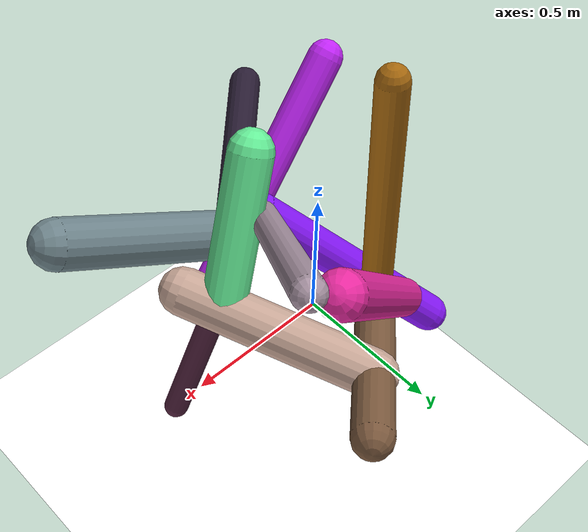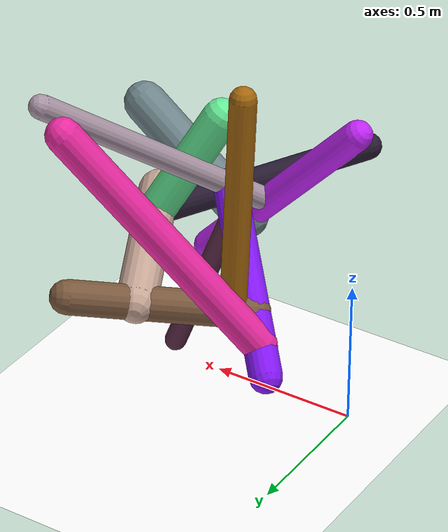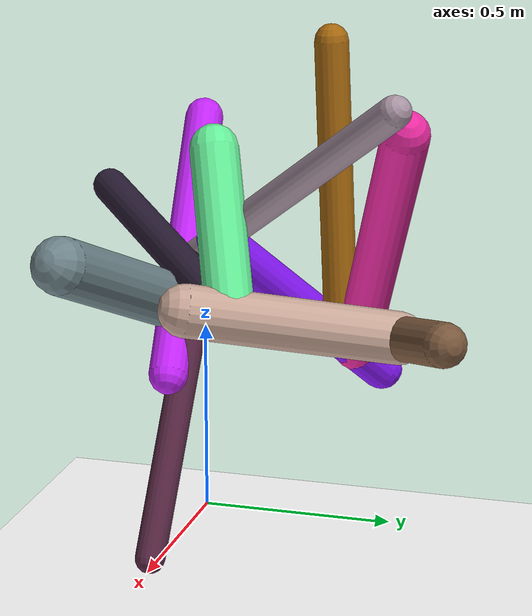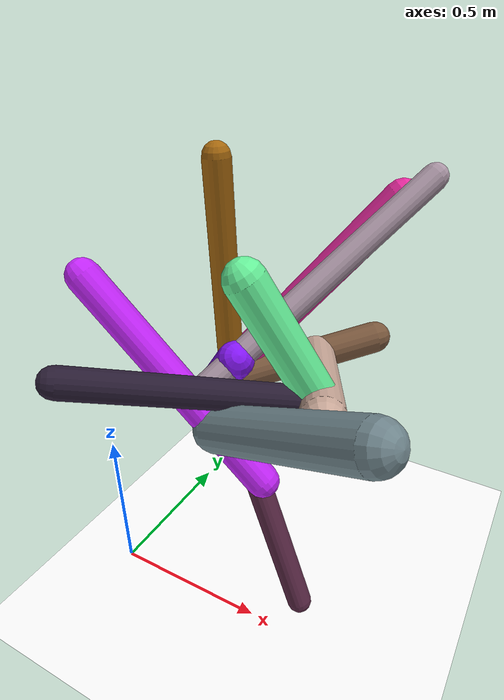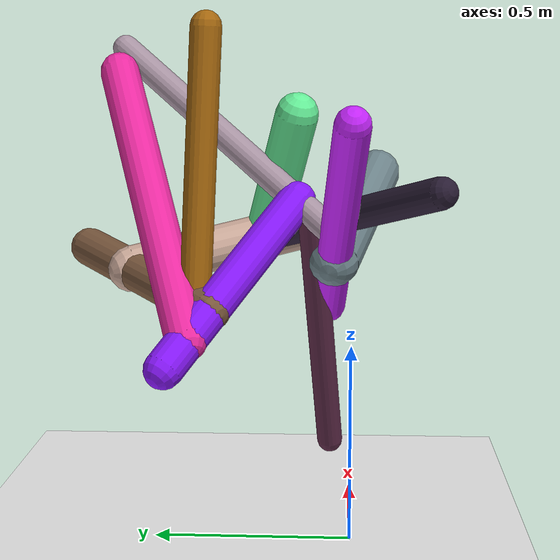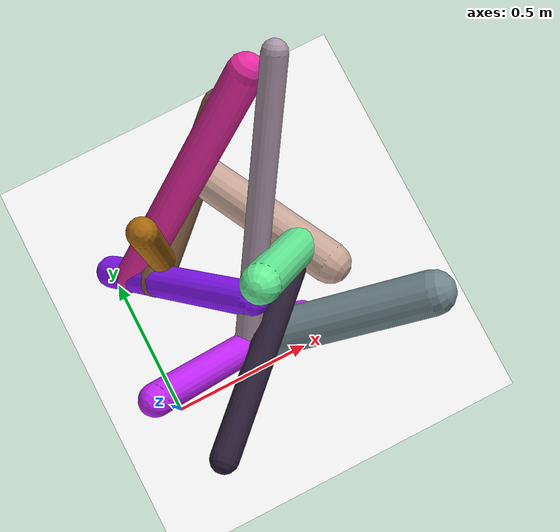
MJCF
<mujoco model="morphology">
  <option timestep="0.01"/>
  <default>
    <default class="/"/>
    <default class="0/"/>
    <default class="0/1/"/>
    <default class="0/2/"/>
    <default class="0/2/3/"/>
    <default class="0/2/4/"/>
    <default class="0/2/4/5/"/>
    <default class="0/2/4/5/6/"/>
    <default class="0/2/4/5/7/"/>
    <default class="0/2/4/5/7/8/"/>
    <default class="0/2/4/5/7/8/9/"/>
    <default class="0/2/4/10/"/>
  </default>
  <asset>
    <texture name="texplane" type="2d" builtin="checker" rgb1="0.10000000000000001 0.20000000000000001 0.29999999999999999" rgb2="0.20000000000000001 0.29999999999999999 0.40000000000000002" width="300" height="300"/>
    <material name="MatPlane" class="/" texture="texplane" texrepeat="20 20" specular="1" shininess="1" reflectance="0.5"/>
  </asset>
  <worldbody>
    <light name="//unnamed_light_0" class="/" directional="true" pos="0 0 1.5" dir="0 0 -1.3" cutoff="100" exponent="1" diffuse="1 1 1" specular="0.10000000000000001 0.10000000000000001 0.10000000000000001"/>
    <geom name="ground" class="/" type="plane" size="15 15 0.5" material="MatPlane" rgba="1 1 1 1"/>
    <site name="body" class="/" size="9.9999999999999995e-07 9.9999999999999995e-07 9.9999999999999995e-07" pos="0 0 1.0573714137077332"/>
    <body pos="0 0 1.0573714137077332" name="0/">
      <freejoint name="0/"/>
      <geom name="0/geom" class="0/" type="capsule" contype="1" conaffinity="1" condim="3" size="0.048256421092265925" rgba="0.77320503247821526 0.14563068999918494 0.98426402251969769 1" friction="0.59999999999999998 0.10000000000000001 0.10000000000000001" fromto="0 0 0 0.50148189398864762 0.062568471009341264 -0.53066984077522195"/>
      <site name="0/end0" class="0/" size="0.0050000000000000001" pos="0.50148189398864762 0.062568471009341264 -0.53066984077522195"/>
      <site name="0/attach1" class="0/" size="9.9999999999999995e-07 9.9999999999999995e-07 9.9999999999999995e-07" pos="0.36696053372214832 0.045784623115997083 -0.38831888117087487"/>
      <body pos="0.36696053372214832 0.045784623115997083 -0.38831888117087487" name="0/1/">
        <joint name="0/1/joint/" class="0/" type="hinge" axis="0 0 1" limited="true" range="-45.30890669896749 45.30890669896749"/>
        <geom name="0/1/geom" class="0/1/" type="capsule" contype="1" conaffinity="1" condim="3" size="0.06941828917359999" rgba="0.43699211655024595 0.52362504660200038 0.55122341599919489 1" friction="0.59999999999999998 0.10000000000000001 0.10000000000000001" fromto="0 0 0 0.47436471406161584 -0.12542798980905423 0.21310827968692792"/>
        <site name="0/1/end1" class="0/1/" size="0.0050000000000000001" pos="0.47436471406161584 -0.12542798980905423 0.21310827968692792"/>
      </body>
      <site name="0/attach2" class="0/" size="9.9999999999999995e-07 9.9999999999999995e-07 9.9999999999999995e-07" pos="0.29412505078250195 0.036697146863337402 -0.31124412613446767"/>
      <body pos="0.29412505078250195 0.036697146863337402 -0.31124412613446767" name="0/2/">
        <joint name="0/2/joint/" class="0/" type="hinge" axis="0 1 0" limited="true" range="-67.596058956622358 67.596058956622358"/>
        <geom name="0/2/geom" class="0/2/" type="capsule" contype="1" conaffinity="1" condim="3" size="0.038864954119602092" rgba="0.66748048044383723 0.58538042851355365 0.64655387472538917 1" friction="0.59999999999999998 0.10000000000000001 0.10000000000000001" fromto="0 0 0 0.40923468593835088 0.62635192637694237 0.5084211249192585"/>
        <site name="0/2/end2" class="0/2/" size="0.0050000000000000001" pos="0.40923468593835088 0.62635192637694237 0.5084211249192585"/>
        <site name="0/2/attach3" class="0/2/" size="9.9999999999999995e-07 9.9999999999999995e-07 9.9999999999999995e-07" pos="0.047605256673224308 0.07286196709981399 0.059143369273241118"/>
        <body pos="0.047605256673224308 0.07286196709981399 0.059143369273241118" name="0/2/3/">
          <joint name="0/2/3/joint/" class="0/2/" type="hinge" axis="-0.89181598681669882 0.35124706719211418 0.28511356236962171" limited="true" range="-54.823813326706997 54.823813326706997"/>
          <geom name="0/2/3/geom" class="0/2/3/" type="capsule" contype="1" conaffinity="1" condim="3" size="0.036932854321422799" rgba="0.36052718631969183 0.16230396817376602 0.27785560865827619 1" friction="0.59999999999999998 0.10000000000000001 0.10000000000000001" fromto="0 0 0 0.29663755496144706 -0.053640966350110064 -0.70527065997027338"/>
          <site name="0/2/3/end3" class="0/2/3/" size="0.0050000000000000001" pos="0.29663755496144706 -0.053640966350110064 -0.70527065997027338"/>
        </body>
        <site name="0/2/attach4" class="0/2/" size="9.9999999999999995e-07 9.9999999999999995e-07 9.9999999999999995e-07" pos="0.073427914797316682 0.11238469627198149 0.091224679443108428"/>
        <body pos="0.073427914797316682 0.11238469627198149 0.091224679443108428" name="0/2/4/">
          <geom name="0/2/4/geom" class="0/2/4/" type="capsule" contype="1" conaffinity="1" condim="3" size="0.052959222556168611" rgba="0.52995042280288485 0.090861573534403939 0.97664286205781448 1" friction="0.59999999999999998 0.10000000000000001 0.10000000000000001" fromto="0 0 0 -0.34480077224665612 0.33094224771098046 -0.40682416466349386"/>
          <site name="0/2/4/end4" class="0/2/4/" size="0.0050000000000000001" pos="-0.34480077224665612 0.33094224771098046 -0.40682416466349386"/>
          <site name="0/2/4/attach5" class="0/2/4/" size="9.9999999999999995e-07 9.9999999999999995e-07 9.9999999999999995e-07" pos="-0.22960524365400725 0.22037675532445505 -0.27090705407434118"/>
          <body pos="-0.22960524365400725 0.22037675532445505 -0.27090705407434118" name="0/2/4/5/">
            <joint name="0/2/4/5/joint/" class="0/2/4/" type="hinge" axis="1.1102230246251565e-16 0.77574280330529355 0.63104920816053989" limited="true" range="-61.54815028615657 61.54815028615657"/>
            <geom name="0/2/4/5/geom" class="0/2/4/5/" type="capsule" contype="1" conaffinity="1" condim="3" size="0.054950926967127264" rgba="0.48344942625507914 0.34850900880737057 0.24078366145894092 1" friction="0.59999999999999998 0.10000000000000001 0.10000000000000001" fromto="0 0 0 0.42564151712336207 0.38580759955868049 0.11517717694609675"/>
            <site name="0/2/4/5/end5" class="0/2/4/5/" size="0.0050000000000000001" pos="0.42564151712336207 0.38580759955868049 0.11517717694609675"/>
            <site name="0/2/4/5/attach6" class="0/2/4/5/" size="9.9999999999999995e-07 9.9999999999999995e-07 9.9999999999999995e-07" pos="0.047918029669063618 0.0434335920216284 0.012966459238755333"/>
            <body pos="0.047918029669063618 0.0434335920216284 0.012966459238755333" name="0/2/4/5/6/">
              <geom name="0/2/4/5/6/geom" class="0/2/4/5/6/" type="capsule" contype="1" conaffinity="1" condim="3" size="0.042273375602094682" rgba="0.65677402375969229 0.41125919345675865 0.058894919917054533 1" friction="0.59999999999999998 0.10000000000000001 0.10000000000000001" fromto="0 0 0 -0.011045892448398265 -0.032857968322449915 0.72501301399477791"/>
              <site name="0/2/4/5/6/end6" class="0/2/4/5/6/" size="0.0050000000000000001" pos="-0.011045892448398265 -0.032857968322449915 0.72501301399477791"/>
            </body>
            <site name="0/2/4/5/attach7" class="0/2/4/5/" size="9.9999999999999995e-07 9.9999999999999995e-07 9.9999999999999995e-07" pos="0.2688426591355787 0.24368285706962406 0.072747928188930375"/>
            <body pos="0.2688426591355787 0.24368285706962406 0.072747928188930375" name="0/2/4/5/7/">
              <joint name="0/2/4/5/7/joint/" class="0/2/4/5/" type="hinge" axis="-0.68719902016348833 0.69611129926106796 0.20781377655826797" limited="true" range="-34.271640078063193 34.271640078063193"/>
              <geom name="0/2/4/5/7/geom" class="0/2/4/5/7/" type="capsule" contype="1" conaffinity="1" condim="3" size="0.06498545250602529" rgba="0.7888874080539322 0.65851023410424669 0.59608909322103476 1" friction="0.59999999999999998 0.10000000000000001 0.10000000000000001" fromto="0 0 0 0.22755370341814518 -0.46381645532785354 0.095308352593329815"/>
              <site name="0/2/4/5/7/end7" class="0/2/4/5/7/" size="0.0050000000000000001" pos="0.22755370341814518 -0.46381645532785354 0.095308352593329815"/>
              <site name="0/2/4/5/7/attach8" class="0/2/4/5/7/" size="9.9999999999999995e-07 9.9999999999999995e-07 9.9999999999999995e-07" pos="0.1796047863538919 -0.36608349640217691 0.075225478856792025"/>
              <body pos="0.1796047863538919 -0.36608349640217691 0.075225478856792025" name="0/2/4/5/7/8/">
                <joint name="0/2/4/5/7/8/joint/" class="0/2/4/5/7/" type="hinge" axis="0.90132239766554123 0.42428378440970094 -0.087184894066701976" limited="true" range="-40.148635176540502 40.148635176540502"/>
                <geom name="0/2/4/5/7/8/geom" class="0/2/4/5/7/8/" type="capsule" contype="1" conaffinity="1" condim="3" size="0.043817410149746855" rgba="0.16305794433204646 0.11435728210557372 0.2047942918287331 1" friction="0.59999999999999998 0.10000000000000001 0.10000000000000001" fromto="0 0 0 -0.49828818689611415 -0.47434836650129708 0.16720323162811246"/>
                <site name="0/2/4/5/7/8/end8" class="0/2/4/5/7/8/" size="0.0050000000000000001" pos="-0.49828818689611415 -0.47434836650129708 0.16720323162811246"/>
                <site name="0/2/4/5/7/8/attach9" class="0/2/4/5/7/8/" size="9.9999999999999995e-07 9.9999999999999995e-07 9.9999999999999995e-07" pos="-0.0019688072729984341 -0.0018742176484657165 0.0006606436739928196"/>
                <body pos="-0.0019688072729984341 -0.0018742176484657165 0.0006606436739928196" name="0/2/4/5/7/8/9/">
                  <geom name="0/2/4/5/7/8/9/geom" class="0/2/4/5/7/8/9/" type="capsule" contype="1" conaffinity="1" condim="3" size="0.059768317976203578" rgba="0.40193980108854366 0.94478193914696795 0.60205607281874207 1" friction="0.59999999999999998 0.10000000000000001 0.10000000000000001" fromto="0 0 0 -0.18677778406259871 -0.095082166350990982 0.35690231967733821"/>
                  <site name="0/2/4/5/7/8/9/end9" class="0/2/4/5/7/8/9/" size="0.0050000000000000001" pos="-0.18677778406259871 -0.095082166350990982 0.35690231967733821"/>
                </body>
              </body>
            </body>
          </body>
          <site name="0/2/4/attach10" class="0/2/4/" size="9.9999999999999995e-07 9.9999999999999995e-07 9.9999999999999995e-07" pos="-0.2884859143957238 0.27689084430118827 -0.34037928736791778"/>
          <body pos="-0.2884859143957238 0.27689084430118827 -0.34037928736791778" name="0/2/4/10/">
            <geom name="0/2/4/10/geom" class="0/2/4/10/" type="capsule" contype="1" conaffinity="1" condim="3" size="0.056102580482000369" rgba="0.92694581329622705 0.16658233391918553 0.63821559835346875 1" friction="0.59999999999999998 0.10000000000000001 0.10000000000000001" fromto="0 0 0 0.54087536801797675 0.2443157721255611 0.68902895080565085"/>
            <site name="0/2/4/10/end10" class="0/2/4/10/" size="0.0050000000000000001" pos="0.54087536801797675 0.2443157721255611 0.68902895080565085"/>
          </body>
        </body>
      </body>
      <camera name="0/iso" class="0/" mode="trackcom" pos="-2.2999999999999998 -2.2999999999999998 1" xyaxes="0.45000000000000001 -0.45000000000000001 0 0.29999999999999999 0.14999999999999999 0.93999999999999995"/>
    </body>
  </worldbody>
  <actuator>
    <motor name="0/1/motor" class="0/1/" ctrllimited="true" ctrlrange="-1 1" gear="79" joint="0/1/joint/"/>
    <motor name="0/2/motor" class="0/2/" ctrllimited="true" ctrlrange="-1 1" gear="75" joint="0/2/joint/"/>
    <motor name="0/2/3/motor" class="0/2/3/" ctrllimited="true" ctrlrange="-1 1" gear="92" joint="0/2/3/joint/"/>
    <motor name="0/2/4/5/motor" class="0/2/4/5/" ctrllimited="true" ctrlrange="-1 1" gear="93" joint="0/2/4/5/joint/"/>
    <motor name="0/2/4/5/7/motor" class="0/2/4/5/7/" ctrllimited="true" ctrlrange="-1 1" gear="99" joint="0/2/4/5/7/joint/"/>
    <motor name="0/2/4/5/7/8/motor" class="0/2/4/5/7/8/" ctrllimited="true" ctrlrange="-1 1" gear="96" joint="0/2/4/5/7/8/joint/"/>
  </actuator>
  <sensor>
    <subtreelinvel name="velocity" body="0/"/>
  </sensor>
</mujoco>
